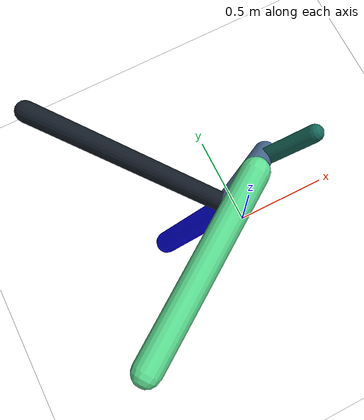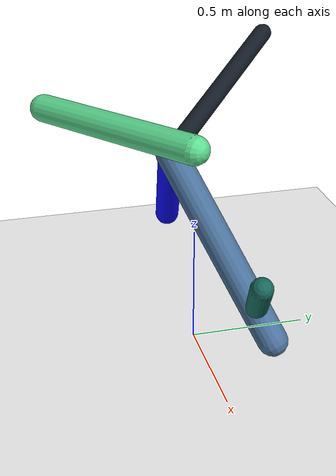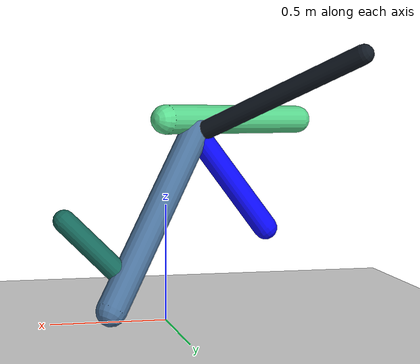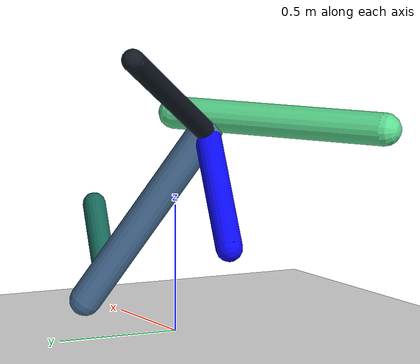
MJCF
<mujoco model="morphology">
  <option timestep="0.01"/>
  <default>
    <default class="/"/>
    <default class="0/"/>
    <default class="0/1/"/>
    <default class="0/1/2/"/>
    <default class="0/1/2/3/"/>
    <default class="0/1/4/"/>
  </default>
  <asset>
    <texture name="texplane" type="2d" builtin="checker" rgb1="0.10000000000000001 0.20000000000000001 0.29999999999999999" rgb2="0.20000000000000001 0.29999999999999999 0.40000000000000002" width="300" height="300"/>
    <material name="MatPlane" class="/" texture="texplane" texrepeat="20 20" specular="1" shininess="1" reflectance="0.5"/>
  </asset>
  <worldbody>
    <light name="//unnamed_light_0" class="/" directional="true" pos="0 0 1.5" dir="0 0 -1.3" cutoff="100" exponent="1" diffuse="1 1 1" specular="0.10000000000000001 0.10000000000000001 0.10000000000000001"/>
    <geom name="ground" class="/" type="plane" size="15 15 0.5" material="MatPlane" rgba="1 1 1 1"/>
    <site name="body" class="/" size="9.9999999999999995e-07 9.9999999999999995e-07 9.9999999999999995e-07" pos="0 0 0.86541554927825926"/>
    <body pos="0 0 0.86541554927825926" name="0/">
      <freejoint name="0/"/>
      <geom name="0/geom" class="0/" type="capsule" contype="1" conaffinity="1" condim="3" size="0.063976770520697224" rgba="0.35715944769290542 0.85822343542186141 0.56395597619201887 1" friction="0.59999999999999998 0.10000000000000001 0.10000000000000001" fromto="0 0 0 -0.73593707567456867 -0.5087604997281574 -0.02311970595125179"/>
      <site name="0/end0" class="0/" size="0.0050000000000000001" pos="-0.73593707567456867 -0.5087604997281574 -0.02311970595125179"/>
      <site name="0/attach1" class="0/" size="9.9999999999999995e-07 9.9999999999999995e-07 9.9999999999999995e-07" pos="-0.10444090793281882 -0.07220102134854238 -0.0032810455682984055"/>
      <body pos="-0.10444090793281882 -0.07220102134854238 -0.0032810455682984055" name="0/1/">
        <joint name="0/1/joint/" class="0/" type="hinge" axis="0 1 0" limited="true" range="-67.074617044652086 67.074617044652086"/>
        <geom name="0/1/geom" class="0/1/" type="capsule" contype="1" conaffinity="1" condim="3" size="0.051936950525427406" rgba="0.03771923072150507 0.031076380401882764 0.9605059721120135 1" friction="0.59999999999999998 0.10000000000000001 0.10000000000000001" fromto="0 0 0 -0.33997219886245161 0.067097913040988999 -0.47285802508787561"/>
        <site name="0/1/end1" class="0/1/" size="0.0050000000000000001" pos="-0.33997219886245161 0.067097913040988999 -0.47285802508787561"/>
        <site name="0/1/attach2" class="0/1/" size="9.9999999999999995e-07 9.9999999999999995e-07 9.9999999999999995e-07" pos="-0.038957426169931988 0.0076887522044366378 -0.054184817649380199"/>
        <body pos="-0.038957426169931988 0.0076887522044366378 -0.054184817649380199" name="0/1/2/">
          <geom name="0/1/2/geom" class="0/1/2/" type="capsule" contype="1" conaffinity="1" condim="3" size="0.064536510094797508" rgba="0.28998959514977285 0.44412136786163747 0.6057945792134356 1" friction="0.59999999999999998 0.10000000000000001 0.10000000000000001" fromto="0 0 0 0.41996614182800096 0.32859379570897063 -0.70794971241306426"/>
          <site name="0/1/2/end2" class="0/1/2/" size="0.0050000000000000001" pos="0.41996614182800096 0.32859379570897063 -0.70794971241306426"/>
          <site name="0/1/2/attach3" class="0/1/2/" size="9.9999999999999995e-07 9.9999999999999995e-07 9.9999999999999995e-07" pos="0.35100661096273705 0.2746378413106102 -0.59170253155295149"/>
          <body pos="0.35100661096273705 0.2746378413106102 -0.59170253155295149" name="0/1/2/3/">
            <joint name="0/1/2/3/joint/" class="0/1/2/" type="hinge" axis="-0.88061160468810673 0.19949035490439959 -0.4297985574530867" limited="true" range="-51.605391633128718 51.605391633128718"/>
            <geom name="0/1/2/3/geom" class="0/1/2/3/" type="capsule" contype="1" conaffinity="1" condim="3" size="0.046967549499343043" rgba="0.083049509537746147 0.40327436771427461 0.35241008475471403 1" friction="0.59999999999999998 0.10000000000000001 0.10000000000000001" fromto="0 0 0 0.24383143222062387 -0.068491437444892611 0.24233879294857141"/>
            <site name="0/1/2/3/end3" class="0/1/2/3/" size="0.0050000000000000001" pos="0.24383143222062387 -0.068491437444892611 0.24233879294857141"/>
          </body>
        </body>
        <site name="0/1/attach4" class="0/1/" size="9.9999999999999995e-07 9.9999999999999995e-07 9.9999999999999995e-07" pos="-0.046054892944679938 0.0090895291210692265 -0.064056489902180963"/>
        <body pos="-0.046054892944679938 0.0090895291210692265 -0.064056489902180963" name="0/1/4/">
          <joint name="0/1/4/joint/" class="0/1/" type="hinge" axis="-0.81467391183705073 -0.081473608839587916 0.5741676309535142" limited="true" range="-68.231967586071377 68.231967586071377"/>
          <geom name="0/1/4/geom" class="0/1/4/" type="capsule" contype="1" conaffinity="1" condim="3" size="0.04155772124195338" rgba="0.07091439814708711 0.10246978868019974 0.14219639386350913 1" friction="0.59999999999999998 0.10000000000000001 0.10000000000000001" fromto="0 0 0 -0.54685368430239167 0.57953254531341036 0.33728936909798035"/>
          <site name="0/1/4/end4" class="0/1/4/" size="0.0050000000000000001" pos="-0.54685368430239167 0.57953254531341036 0.33728936909798035"/>
        </body>
      </body>
      <camera name="0/iso" class="0/" mode="trackcom" pos="-2.2999999999999998 -2.2999999999999998 1" xyaxes="0.45000000000000001 -0.45000000000000001 0 0.29999999999999999 0.14999999999999999 0.93999999999999995"/>
    </body>
  </worldbody>
  <actuator>
    <motor name="0/1/motor" class="0/1/" ctrllimited="true" ctrlrange="-1 1" gear="65" joint="0/1/joint/"/>
    <motor name="0/1/2/3/motor" class="0/1/2/3/" ctrllimited="true" ctrlrange="-1 1" gear="70" joint="0/1/2/3/joint/"/>
    <motor name="0/1/4/motor" class="0/1/4/" ctrllimited="true" ctrlrange="-1 1" gear="68" joint="0/1/4/joint/"/>
  </actuator>
  <sensor>
    <subtreelinvel name="velocity" body="0/"/>
  </sensor>
</mujoco>
